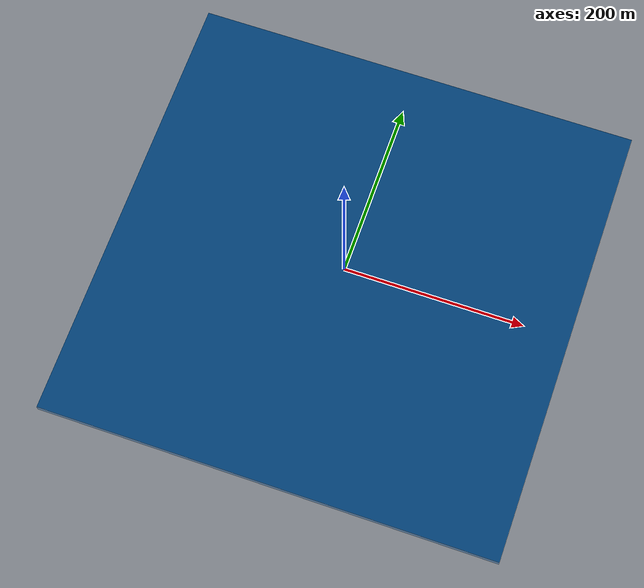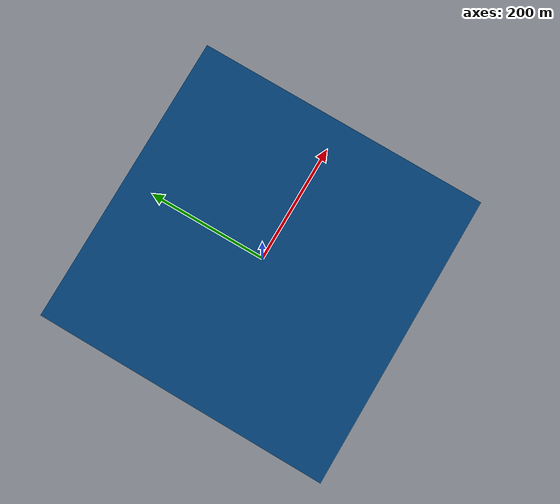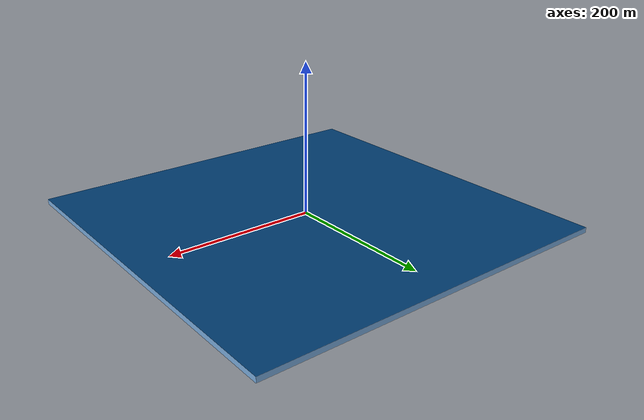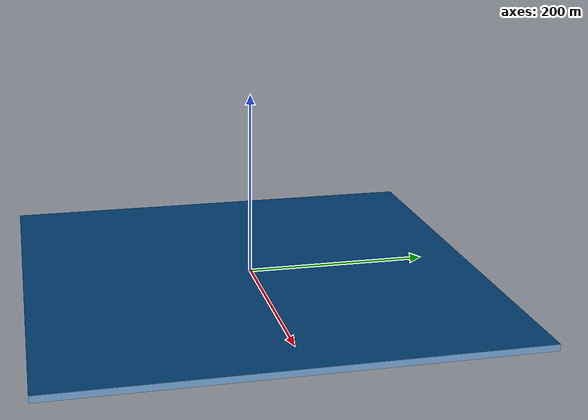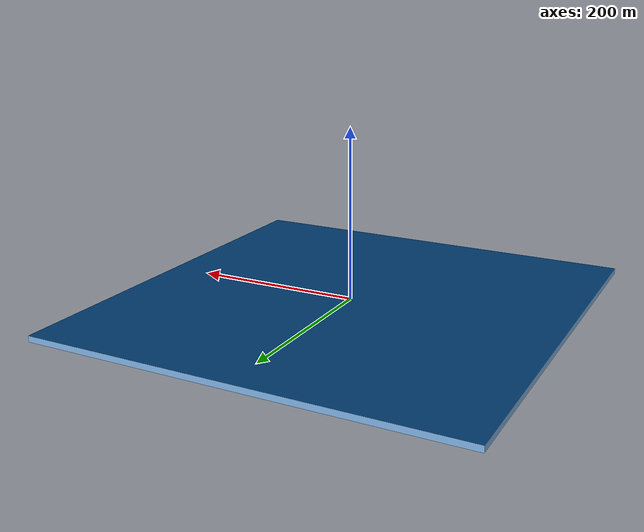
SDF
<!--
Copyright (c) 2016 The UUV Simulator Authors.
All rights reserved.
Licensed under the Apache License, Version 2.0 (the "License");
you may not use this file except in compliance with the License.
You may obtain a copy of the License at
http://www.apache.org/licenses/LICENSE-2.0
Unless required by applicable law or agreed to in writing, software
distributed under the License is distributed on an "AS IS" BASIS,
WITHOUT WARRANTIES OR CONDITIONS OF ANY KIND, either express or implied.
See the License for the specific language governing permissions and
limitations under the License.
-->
<?xml version="1.0" ?>
<sdf version="1.4">

<model name="ocean">
  <static>true</static>
  <link name="ocean_link">

  <visual name="ocean_visual1">
    <pose>0 0 -1.0 0 0 0</pose>
    <geometry>
      <mesh><uri>model://ocean/mesh.dae</uri><scale>0.5 0.5 0.5</scale></mesh>
    </geometry>
    <material>
      <ambient>0.55 0.55 0.55 1.0</ambient>
      <diffuse>1.0 1.0 1.0 1.0</diffuse>
      <specular>0.02 0.02 0.02 1.0</specular>
      <pbr>
        <metal>
          <albedo_map>model://ocean/materials/textures/ocean_water.jpg</albedo_map>
          <normal_map>model://ocean/materials/textures/normals.dds</normal_map>
          <roughness>0.55</roughness>
          <metalness>0.0</metalness>
        </metal>
      </pbr>
    </material>
  </visual>

  <visual name="ocean_below">
    <pose>0 0 -0.08 0 0 0</pose>
    <geometry>
      <mesh><uri>model://ocean/mesh_below.dae</uri><scale>0.5 0.5 0.5</scale></mesh>
    </geometry>
    <material>
      <ambient>0.0 0.18 0.35 1.0</ambient>
      <diffuse>0.0 0.24 0.45 1.0</diffuse>
      <specular>0.05 0.05 0.05 1.0</specular>
    </material>
  </visual>
  <visual name="north">
    <pose>250 0 -3.5 0 -1.5708 0</pose>
    <geometry><plane><normal>0 0 1</normal><size>7 500</size></plane></geometry>
    <material>
      <ambient>0.4 0.6 0.8 1</ambient>
      <diffuse>0.5 0.7 0.9 1</diffuse>
      <specular>0.2 0.2 0.2 1</specular>
    </material>
  </visual>

  <visual name="south">
    <pose>-250 0 -3.5 0 1.5708 0</pose>
    <geometry><plane><normal>0 0 1</normal><size>7 500</size></plane></geometry>
    <material>
      <ambient>0.4 0.6 0.8 1</ambient>
      <diffuse>0.5 0.7 0.9 1</diffuse>
      <specular>0.2 0.2 0.2 1</specular>
    </material>
  </visual>

  <visual name="west">
    <pose>0 250 -3.5 1.5708 0 0</pose>
    <geometry><plane><normal>0 0 1</normal><size>500 7</size></plane></geometry>
    <material>
      <ambient>0.4 0.6 0.8 1</ambient>
      <diffuse>0.5 0.7 0.9 1</diffuse>
      <specular>0.2 0.2 0.2 1</specular>
    </material>
  </visual>

  <visual name="east">
    <pose>0 -250 -3.5 -1.5708 0 0</pose>
    <geometry><plane><normal>0 0 1</normal><size>500 7</size></plane></geometry>
    <material>
      <ambient>0.4 0.6 0.8 1</ambient>
      <diffuse>0.5 0.7 0.9 1</diffuse>
      <specular>0.2 0.2 0.2 1</specular>
    </material>
  </visual>

  </link>
</model>
</sdf>
